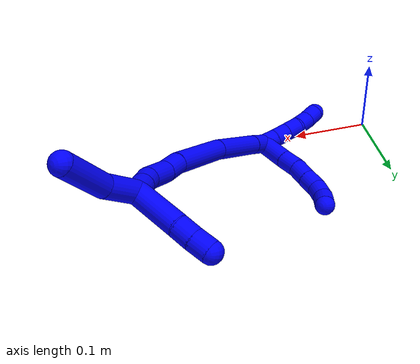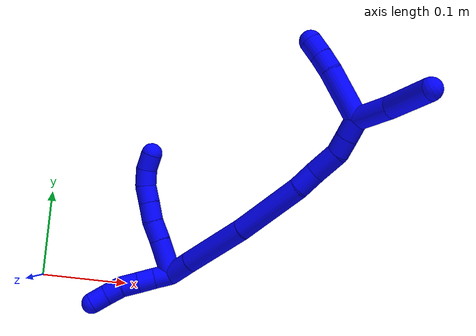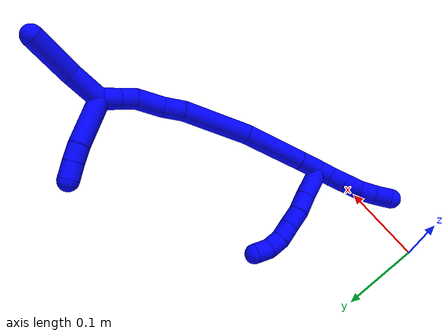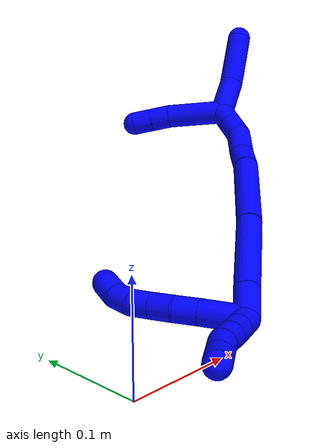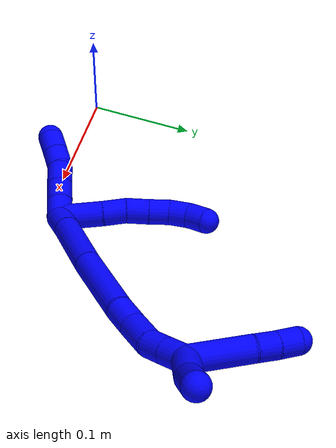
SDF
<sdf version="1.7">
 <world name="default">
  <model name="1">
   <static>0</static>
   <link name="1">
    <collision name="collision-cylinder-e_1_2_8">
     <pose>-0.005005 0.020351 0.004616 -1.34775 -0.23539 0.188293</pose>
     <geometry><cylinder><radius>0.0125</radius><length>0.042918</length></cylinder></geometry>
     <surface>
      <friction><ode><mu>1.16</mu><mu2>1.16</mu2><slip1>0</slip1><slip2>0</slip2></ode></friction>
      <contact><ode><kp>1e+06</kp><kd>1</kd><max_vel>0</max_vel><min_depth>0.001</min_depth></ode></contact>
     </surface>
    </collision>
    <visual name="visual-cylinder-e_1_2_8">
     <pose>-0.005005 0.020351 0.004616 -1.34775 -0.23539 0.188293</pose>
     <geometry><cylinder><radius>0.0125</radius><length>0.042918</length></cylinder></geometry>
     <material><ambient>0 0 1 1</ambient></material>
    </visual>
    <collision name="collision-cylinder-e_2_8_9">
     <pose>-0.013042 0.051818 0.011293 -1.38749 -0.262066 0.218332</pose>
     <geometry><cylinder><radius>0.0125</radius><length>0.023411</length></cylinder></geometry>
     <surface>
      <friction><ode><mu>1.16</mu><mu2>1.16</mu2><slip1>0</slip1><slip2>0</slip2></ode></friction>
      <contact><ode><kp>1e+06</kp><kd>1</kd><max_vel>0</max_vel><min_depth>0.001</min_depth></ode></contact>
     </surface>
    </collision>
    <visual name="visual-cylinder-e_2_8_9">
     <pose>-0.013042 0.051818 0.011293 -1.38749 -0.262066 0.218332</pose>
     <geometry><cylinder><radius>0.0125</radius><length>0.023411</length></cylinder></geometry>
     <material><ambient>0 0 1 1</ambient></material>
    </visual>
    <collision name="collision-cylinder-e_3_9_10">
     <pose>-0.017332 0.073625 0.016569 -1.27865 -0.112105 0.083389</pose>
     <geometry><cylinder><radius>0.0125</radius><length>0.022468</length></cylinder></geometry>
     <surface>
      <friction><ode><mu>1.16</mu><mu2>1.16</mu2><slip1>0</slip1><slip2>0</slip2></ode></friction>
      <contact><ode><kp>1e+06</kp><kd>1</kd><max_vel>0</max_vel><min_depth>0.001</min_depth></ode></contact>
     </surface>
    </collision>
    <visual name="visual-cylinder-e_3_9_10">
     <pose>-0.017332 0.073625 0.016569 -1.27865 -0.112105 0.083389</pose>
     <geometry><cylinder><radius>0.0125</radius><length>0.022468</length></cylinder></geometry>
     <material><ambient>0 0 1 1</ambient></material>
    </visual>
    <collision name="collision-cylinder-e_4_10_11">
     <pose>-0.020062 0.094269 0.022752 -1.28101 -0.14095 0.105132</pose>
     <geometry><cylinder><radius>0.0125</radius><length>0.020981</length></cylinder></geometry>
     <surface>
      <friction><ode><mu>1.16</mu><mu2>1.16</mu2><slip1>0</slip1><slip2>0</slip2></ode></friction>
      <contact><ode><kp>1e+06</kp><kd>1</kd><max_vel>0</max_vel><min_depth>0.001</min_depth></ode></contact>
     </surface>
    </collision>
    <visual name="visual-cylinder-e_4_10_11">
     <pose>-0.020062 0.094269 0.022752 -1.28101 -0.14095 0.105132</pose>
     <geometry><cylinder><radius>0.0125</radius><length>0.020981</length></cylinder></geometry>
     <material><ambient>0 0 1 1</ambient></material>
    </visual>
    <collision name="collision-cylinder-e_5_11_12">
     <pose>-0.022514 0.112516 0.031258 -0.982028 -0.097739 0.05229</pose>
     <geometry><cylinder><radius>0.0125</radius><length>0.02004</length></cylinder></geometry>
     <surface>
      <friction><ode><mu>1.16</mu><mu2>1.16</mu2><slip1>0</slip1><slip2>0</slip2></ode></friction>
      <contact><ode><kp>1e+06</kp><kd>1</kd><max_vel>0</max_vel><min_depth>0.001</min_depth></ode></contact>
     </surface>
    </collision>
    <visual name="visual-cylinder-e_5_11_12">
     <pose>-0.022514 0.112516 0.031258 -0.982028 -0.097739 0.05229</pose>
     <geometry><cylinder><radius>0.0125</radius><length>0.02004</length></cylinder></geometry>
     <material><ambient>0 0 1 1</ambient></material>
    </visual>
    <collision name="collision-cylinder-e_6_12_6">
     <pose>-0.024307 0.126868 0.044823 -0.646647 -0.08094 0.027135</pose>
     <geometry><cylinder><radius>0.0125</radius><length>0.02018</length></cylinder></geometry>
     <surface>
      <friction><ode><mu>1.16</mu><mu2>1.16</mu2><slip1>0</slip1><slip2>0</slip2></ode></friction>
      <contact><ode><kp>1e+06</kp><kd>1</kd><max_vel>0</max_vel><min_depth>0.001</min_depth></ode></contact>
     </surface>
    </collision>
    <visual name="visual-cylinder-e_6_12_6">
     <pose>-0.024307 0.126868 0.044823 -0.646647 -0.08094 0.027135</pose>
     <geometry><cylinder><radius>0.0125</radius><length>0.02018</length></cylinder></geometry>
     <material><ambient>0 0 1 1</ambient></material>
    </visual>
    <collision name="collision-cylinder-e_1_2_13">
     <pose>-0.005603 0.001327 -0.008176 -2.98065 -0.594693 2.62691</pose>
     <geometry><cylinder><radius>0.0125</radius><length>0.02</length></cylinder></geometry>
     <surface>
      <friction><ode><mu>1.16</mu><mu2>1.16</mu2><slip1>0</slip1><slip2>0</slip2></ode></friction>
      <contact><ode><kp>1e+06</kp><kd>1</kd><max_vel>0</max_vel><min_depth>0.001</min_depth></ode></contact>
     </surface>
    </collision>
    <visual name="visual-cylinder-e_1_2_13">
     <pose>-0.005603 0.001327 -0.008176 -2.98065 -0.594693 2.62691</pose>
     <geometry><cylinder><radius>0.0125</radius><length>0.02</length></cylinder></geometry>
     <material><ambient>0 0 1 1</ambient></material>
    </visual>
    <collision name="collision-cylinder-e_2_13_14">
     <pose>-0.017296 0.003598 -0.024227 -3.0224 -0.654957 2.79387</pose>
     <geometry><cylinder><radius>0.0125</radius><length>0.02</length></cylinder></geometry>
     <surface>
      <friction><ode><mu>1.16</mu><mu2>1.16</mu2><slip1>0</slip1><slip2>0</slip2></ode></friction>
      <contact><ode><kp>1e+06</kp><kd>1</kd><max_vel>0</max_vel><min_depth>0.001</min_depth></ode></contact>
     </surface>
    </collision>
    <visual name="visual-cylinder-e_2_13_14">
     <pose>-0.017296 0.003598 -0.024227 -3.0224 -0.654957 2.79387</pose>
     <geometry><cylinder><radius>0.0125</radius><length>0.02</length></cylinder></geometry>
     <material><ambient>0 0 1 1</ambient></material>
    </visual>
    <collision name="collision-cylinder-e_3_14_15">
     <pose>-0.029593 0.005589 -0.039873 -3.00759 -0.669374 2.76037</pose>
     <geometry><cylinder><radius>0.0125</radius><length>0.02</length></cylinder></geometry>
     <surface>
      <friction><ode><mu>1.16</mu><mu2>1.16</mu2><slip1>0</slip1><slip2>0</slip2></ode></friction>
      <contact><ode><kp>1e+06</kp><kd>1</kd><max_vel>0</max_vel><min_depth>0.001</min_depth></ode></contact>
     </surface>
    </collision>
    <visual name="visual-cylinder-e_3_14_15">
     <pose>-0.029593 0.005589 -0.039873 -3.00759 -0.669374 2.76037</pose>
     <geometry><cylinder><radius>0.0125</radius><length>0.02</length></cylinder></geometry>
     <material><ambient>0 0 1 1</ambient></material>
    </visual>
    <collision name="collision-cylinder-e_4_15_16">
     <pose>-0.040192 0.005795 -0.056588 3.04781 -0.454936 -2.74158</pose>
     <geometry><cylinder><radius>0.0125</radius><length>0.02</length></cylinder></geometry>
     <surface>
      <friction><ode><mu>1.16</mu><mu2>1.16</mu2><slip1>0</slip1><slip2>0</slip2></ode></friction>
      <contact><ode><kp>1e+06</kp><kd>1</kd><max_vel>0</max_vel><min_depth>0.001</min_depth></ode></contact>
     </surface>
    </collision>
    <visual name="visual-cylinder-e_4_15_16">
     <pose>-0.040192 0.005795 -0.056588 3.04781 -0.454936 -2.74158</pose>
     <geometry><cylinder><radius>0.0125</radius><length>0.02</length></cylinder></geometry>
     <material><ambient>0 0 1 1</ambient></material>
    </visual>
    <collision name="collision-cylinder-e_5_16_5">
     <pose>-0.049784 0.003493 -0.073949 2.96975 -0.546641 -2.5454</pose>
     <geometry><cylinder><radius>0.0125</radius><length>0.02</length></cylinder></geometry>
     <surface>
      <friction><ode><mu>1.16</mu><mu2>1.16</mu2><slip1>0</slip1><slip2>0</slip2></ode></friction>
      <contact><ode><kp>1e+06</kp><kd>1</kd><max_vel>0</max_vel><min_depth>0.001</min_depth></ode></contact>
     </surface>
    </collision>
    <visual name="visual-cylinder-e_5_16_5">
     <pose>-0.049784 0.003493 -0.073949 2.96975 -0.546641 -2.5454</pose>
     <geometry><cylinder><radius>0.0125</radius><length>0.02</length></cylinder></geometry>
     <material><ambient>0 0 1 1</ambient></material>
    </visual>
    <collision name="collision-cylinder-e_1_2_17">
     <pose>-0.000653 6.8e-05 0.016253 -0.004171 -0.04013 8.4e-05</pose>
     <geometry><cylinder><radius>0.0125</radius><length>0.032532</length></cylinder></geometry>
     <surface>
      <friction><ode><mu>1.16</mu><mu2>1.16</mu2><slip1>0</slip1><slip2>0</slip2></ode></friction>
      <contact><ode><kp>1e+06</kp><kd>1</kd><max_vel>0</max_vel><min_depth>0.001</min_depth></ode></contact>
     </surface>
    </collision>
    <visual name="visual-cylinder-e_1_2_17">
     <pose>-0.000653 6.8e-05 0.016253 -0.004171 -0.04013 8.4e-05</pose>
     <geometry><cylinder><radius>0.0125</radius><length>0.032532</length></cylinder></geometry>
     <material><ambient>0 0 1 1</ambient></material>
    </visual>
    <collision name="collision-cylinder-e_2_17_18">
     <pose>-0.001164 0.000195 0.073056 -0.001455 0.003479 -3e-06</pose>
     <geometry><cylinder><radius>0.0125</radius><length>0.081103</length></cylinder></geometry>
     <surface>
      <friction><ode><mu>1.16</mu><mu2>1.16</mu2><slip1>0</slip1><slip2>0</slip2></ode></friction>
      <contact><ode><kp>1e+06</kp><kd>1</kd><max_vel>0</max_vel><min_depth>0.001</min_depth></ode></contact>
     </surface>
    </collision>
    <visual name="visual-cylinder-e_2_17_18">
     <pose>-0.001164 0.000195 0.073056 -0.001455 0.003479 -3e-06</pose>
     <geometry><cylinder><radius>0.0125</radius><length>0.081103</length></cylinder></geometry>
     <material><ambient>0 0 1 1</ambient></material>
    </visual>
    <collision name="collision-cylinder-e_3_18_19">
     <pose>0.001348 0.00405 0.155512 -0.090339 0.056292 -0.002545</pose>
     <geometry><cylinder><radius>0.0125</radius><length>0.084284</length></cylinder></geometry>
     <surface>
      <friction><ode><mu>1.16</mu><mu2>1.16</mu2><slip1>0</slip1><slip2>0</slip2></ode></friction>
      <contact><ode><kp>1e+06</kp><kd>1</kd><max_vel>0</max_vel><min_depth>0.001</min_depth></ode></contact>
     </surface>
    </collision>
    <visual name="visual-cylinder-e_3_18_19">
     <pose>0.001348 0.00405 0.155512 -0.090339 0.056292 -0.002545</pose>
     <geometry><cylinder><radius>0.0125</radius><length>0.084284</length></cylinder></geometry>
     <material><ambient>0 0 1 1</ambient></material>
    </visual>
    <collision name="collision-cylinder-e_4_19_20">
     <pose>0.005504 0.010981 0.209713 -0.24964 0.139749 -0.017563</pose>
     <geometry><cylinder><radius>0.0125</radius><length>0.025632</length></cylinder></geometry>
     <surface>
      <friction><ode><mu>1.16</mu><mu2>1.16</mu2><slip1>0</slip1><slip2>0</slip2></ode></friction>
      <contact><ode><kp>1e+06</kp><kd>1</kd><max_vel>0</max_vel><min_depth>0.001</min_depth></ode></contact>
     </surface>
    </collision>
    <visual name="visual-cylinder-e_4_19_20">
     <pose>0.005504 0.010981 0.209713 -0.24964 0.139749 -0.017563</pose>
     <geometry><cylinder><radius>0.0125</radius><length>0.025632</length></cylinder></geometry>
     <material><ambient>0 0 1 1</ambient></material>
    </visual>
    <collision name="collision-cylinder-e_5_20_21">
     <pose>0.007493 0.016593 0.238374 -0.150215 0.012289 -0.000925</pose>
     <geometry><cylinder><radius>0.0125</radius><length>0.033102</length></cylinder></geometry>
     <surface>
      <friction><ode><mu>1.16</mu><mu2>1.16</mu2><slip1>0</slip1><slip2>0</slip2></ode></friction>
      <contact><ode><kp>1e+06</kp><kd>1</kd><max_vel>0</max_vel><min_depth>0.001</min_depth></ode></contact>
     </surface>
    </collision>
    <visual name="visual-cylinder-e_5_20_21">
     <pose>0.007493 0.016593 0.238374 -0.150215 0.012289 -0.000925</pose>
     <geometry><cylinder><radius>0.0125</radius><length>0.033102</length></cylinder></geometry>
     <material><ambient>0 0 1 1</ambient></material>
    </visual>
    <collision name="collision-cylinder-e_6_21_22">
     <pose>0.006394 0.023511 0.263935 -0.449819 -0.126805 0.029047</pose>
     <geometry><cylinder><radius>0.0125</radius><length>0.020594</length></cylinder></geometry>
     <surface>
      <friction><ode><mu>1.16</mu><mu2>1.16</mu2><slip1>0</slip1><slip2>0</slip2></ode></friction>
      <contact><ode><kp>1e+06</kp><kd>1</kd><max_vel>0</max_vel><min_depth>0.001</min_depth></ode></contact>
     </surface>
    </collision>
    <visual name="visual-cylinder-e_6_21_22">
     <pose>0.006394 0.023511 0.263935 -0.449819 -0.126805 0.029047</pose>
     <geometry><cylinder><radius>0.0125</radius><length>0.020594</length></cylinder></geometry>
     <material><ambient>0 0 1 1</ambient></material>
    </visual>
    <collision name="collision-cylinder-e_7_22_1">
     <pose>0.003544 0.032939 0.283241 -0.458321 -0.136436 0.031872</pose>
     <geometry><cylinder><radius>0.0125</radius><length>0.022754</length></cylinder></geometry>
     <surface>
      <friction><ode><mu>1.16</mu><mu2>1.16</mu2><slip1>0</slip1><slip2>0</slip2></ode></friction>
      <contact><ode><kp>1e+06</kp><kd>1</kd><max_vel>0</max_vel><min_depth>0.001</min_depth></ode></contact>
     </surface>
    </collision>
    <visual name="visual-cylinder-e_7_22_1">
     <pose>0.003544 0.032939 0.283241 -0.458321 -0.136436 0.031872</pose>
     <geometry><cylinder><radius>0.0125</radius><length>0.022754</length></cylinder></geometry>
     <material><ambient>0 0 1 1</ambient></material>
    </visual>
    <collision name="collision-cylinder-e_1_1_23">
     <pose>-0.003954 0.066795 0.294094 -1.545 -0.203219 0.198077</pose>
     <geometry><cylinder><radius>0.0125</radius><length>0.058973</length></cylinder></geometry>
     <surface>
      <friction><ode><mu>1.16</mu><mu2>1.16</mu2><slip1>0</slip1><slip2>0</slip2></ode></friction>
      <contact><ode><kp>1e+06</kp><kd>1</kd><max_vel>0</max_vel><min_depth>0.001</min_depth></ode></contact>
     </surface>
    </collision>
    <visual name="visual-cylinder-e_1_1_23">
     <pose>-0.003954 0.066795 0.294094 -1.545 -0.203219 0.198077</pose>
     <geometry><cylinder><radius>0.0125</radius><length>0.058973</length></cylinder></geometry>
     <material><ambient>0 0 1 1</ambient></material>
    </visual>
    <collision name="collision-cylinder-e_2_23_24">
     <pose>-0.011222 0.105776 0.294041 -1.64952 -0.129118 0.139672</pose>
     <geometry><cylinder><radius>0.0125</radius><length>0.020455</length></cylinder></geometry>
     <surface>
      <friction><ode><mu>1.16</mu><mu2>1.16</mu2><slip1>0</slip1><slip2>0</slip2></ode></friction>
      <contact><ode><kp>1e+06</kp><kd>1</kd><max_vel>0</max_vel><min_depth>0.001</min_depth></ode></contact>
     </surface>
    </collision>
    <visual name="visual-cylinder-e_2_23_24">
     <pose>-0.011222 0.105776 0.294041 -1.64952 -0.129118 0.139672</pose>
     <geometry><cylinder><radius>0.0125</radius><length>0.020455</length></cylinder></geometry>
     <material><ambient>0 0 1 1</ambient></material>
    </visual>
    <collision name="collision-cylinder-e_3_24_4">
     <pose>-0.014195 0.125968 0.292041 -1.6895 -0.161679 0.182001</pose>
     <geometry><cylinder><radius>0.0125</radius><length>0.020573</length></cylinder></geometry>
     <surface>
      <friction><ode><mu>1.16</mu><mu2>1.16</mu2><slip1>0</slip1><slip2>0</slip2></ode></friction>
      <contact><ode><kp>1e+06</kp><kd>1</kd><max_vel>0</max_vel><min_depth>0.001</min_depth></ode></contact>
     </surface>
    </collision>
    <visual name="visual-cylinder-e_3_24_4">
     <pose>-0.014195 0.125968 0.292041 -1.6895 -0.161679 0.182001</pose>
     <geometry><cylinder><radius>0.0125</radius><length>0.020573</length></cylinder></geometry>
     <material><ambient>0 0 1 1</ambient></material>
    </visual>
    <collision name="collision-cylinder-e_1_1_25">
     <pose>-0.000349 0.032392 0.313454 0.268566 -0.11203 -0.01515</pose>
     <geometry><cylinder><radius>0.0125</radius><length>0.041969</length></cylinder></geometry>
     <surface>
      <friction><ode><mu>1.16</mu><mu2>1.16</mu2><slip1>0</slip1><slip2>0</slip2></ode></friction>
      <contact><ode><kp>1e+06</kp><kd>1</kd><max_vel>0</max_vel><min_depth>0.001</min_depth></ode></contact>
     </surface>
    </collision>
    <visual name="visual-cylinder-e_1_1_25">
     <pose>-0.000349 0.032392 0.313454 0.268566 -0.11203 -0.01515</pose>
     <geometry><cylinder><radius>0.0125</radius><length>0.041969</length></cylinder></geometry>
     <material><ambient>0 0 1 1</ambient></material>
    </visual>
    <collision name="collision-cylinder-e_2_25_3">
     <pose>-0.013059 0.019188 0.359553 0.286955 -0.36524 -0.053348</pose>
     <geometry><cylinder><radius>0.0125</radius><length>0.058031</length></cylinder></geometry>
     <surface>
      <friction><ode><mu>1.16</mu><mu2>1.16</mu2><slip1>0</slip1><slip2>0</slip2></ode></friction>
      <contact><ode><kp>1e+06</kp><kd>1</kd><max_vel>0</max_vel><min_depth>0.001</min_depth></ode></contact>
     </surface>
    </collision>
    <visual name="visual-cylinder-e_2_25_3">
     <pose>-0.013059 0.019188 0.359553 0.286955 -0.36524 -0.053348</pose>
     <geometry><cylinder><radius>0.0125</radius><length>0.058031</length></cylinder></geometry>
     <material><ambient>0 0 1 1</ambient></material>
    </visual>
    <collision name="collision-sphere-3">
     <pose>-0.023422 0.011518 0.385547 0 -0 0</pose>
     <geometry><sphere><radius>0.0125</radius></sphere></geometry>
     <surface>
      <friction><ode><mu>1.16</mu><mu2>1.16</mu2><slip1>0</slip1><slip2>0</slip2></ode></friction>
      <contact><ode><kp>1e+06</kp><kd>1</kd><max_vel>0</max_vel><min_depth>0.001</min_depth></ode></contact>
     </surface>
    </collision>
    <visual name="visual-sphere-3">
     <pose>-0.023422 0.011518 0.385547 0 -0 0</pose>
     <geometry><sphere><radius>0.0125</radius></sphere></geometry>
     <material><ambient>0 0 1 1</ambient></material>
    </visual>
    <collision name="collision-sphere-25">
     <pose>-0.002695 0.026859 0.333559 0 -0 0</pose>
     <geometry><sphere><radius>0.0125</radius></sphere></geometry>
     <surface>
      <friction><ode><mu>1.16</mu><mu2>1.16</mu2><slip1>0</slip1><slip2>0</slip2></ode></friction>
      <contact><ode><kp>1e+06</kp><kd>1</kd><max_vel>0</max_vel><min_depth>0.001</min_depth></ode></contact>
     </surface>
    </collision>
    <visual name="visual-sphere-25">
     <pose>-0.002695 0.026859 0.333559 0 -0 0</pose>
     <geometry><sphere><radius>0.0125</radius></sphere></geometry>
     <material><ambient>0 0 1 1</ambient></material>
    </visual>
    <collision name="collision-sphere-4">
     <pose>-0.01585 0.136048 0.290839 0 -0 0</pose>
     <geometry><sphere><radius>0.0125</radius></sphere></geometry>
     <surface>
      <friction><ode><mu>1.16</mu><mu2>1.16</mu2><slip1>0</slip1><slip2>0</slip2></ode></friction>
      <contact><ode><kp>1e+06</kp><kd>1</kd><max_vel>0</max_vel><min_depth>0.001</min_depth></ode></contact>
     </surface>
    </collision>
    <visual name="visual-sphere-4">
     <pose>-0.01585 0.136048 0.290839 0 -0 0</pose>
     <geometry><sphere><radius>0.0125</radius></sphere></geometry>
     <material><ambient>0 0 1 1</ambient></material>
    </visual>
    <collision name="collision-sphere-24">
     <pose>-0.012539 0.115887 0.293244 0 -0 0</pose>
     <geometry><sphere><radius>0.0125</radius></sphere></geometry>
     <surface>
      <friction><ode><mu>1.16</mu><mu2>1.16</mu2><slip1>0</slip1><slip2>0</slip2></ode></friction>
      <contact><ode><kp>1e+06</kp><kd>1</kd><max_vel>0</max_vel><min_depth>0.001</min_depth></ode></contact>
     </surface>
    </collision>
    <visual name="visual-sphere-24">
     <pose>-0.012539 0.115887 0.293244 0 -0 0</pose>
     <geometry><sphere><radius>0.0125</radius></sphere></geometry>
     <material><ambient>0 0 1 1</ambient></material>
    </visual>
    <collision name="collision-sphere-23">
     <pose>-0.009905 0.095665 0.294839 0 -0 0</pose>
     <geometry><sphere><radius>0.0125</radius></sphere></geometry>
     <surface>
      <friction><ode><mu>1.16</mu><mu2>1.16</mu2><slip1>0</slip1><slip2>0</slip2></ode></friction>
      <contact><ode><kp>1e+06</kp><kd>1</kd><max_vel>0</max_vel><min_depth>0.001</min_depth></ode></contact>
     </surface>
    </collision>
    <visual name="visual-sphere-23">
     <pose>-0.009905 0.095665 0.294839 0 -0 0</pose>
     <geometry><sphere><radius>0.0125</radius></sphere></geometry>
     <material><ambient>0 0 1 1</ambient></material>
    </visual>
    <collision name="collision-sphere-1">
     <pose>0.001997 0.037925 0.293349 0 -0 0</pose>
     <geometry><sphere><radius>0.0125</radius></sphere></geometry>
     <surface>
      <friction><ode><mu>1.16</mu><mu2>1.16</mu2><slip1>0</slip1><slip2>0</slip2></ode></friction>
      <contact><ode><kp>1e+06</kp><kd>1</kd><max_vel>0</max_vel><min_depth>0.001</min_depth></ode></contact>
     </surface>
    </collision>
    <visual name="visual-sphere-1">
     <pose>0.001997 0.037925 0.293349 0 -0 0</pose>
     <geometry><sphere><radius>0.0125</radius></sphere></geometry>
     <material><ambient>0 0 1 1</ambient></material>
    </visual>
    <collision name="collision-sphere-22">
     <pose>0.005092 0.027952 0.273133 0 -0 0</pose>
     <geometry><sphere><radius>0.0125</radius></sphere></geometry>
     <surface>
      <friction><ode><mu>1.16</mu><mu2>1.16</mu2><slip1>0</slip1><slip2>0</slip2></ode></friction>
      <contact><ode><kp>1e+06</kp><kd>1</kd><max_vel>0</max_vel><min_depth>0.001</min_depth></ode></contact>
     </surface>
    </collision>
    <visual name="visual-sphere-22">
     <pose>0.005092 0.027952 0.273133 0 -0 0</pose>
     <geometry><sphere><radius>0.0125</radius></sphere></geometry>
     <material><ambient>0 0 1 1</ambient></material>
    </visual>
    <collision name="collision-sphere-21">
     <pose>0.007696 0.019069 0.254737 0 -0 0</pose>
     <geometry><sphere><radius>0.0125</radius></sphere></geometry>
     <surface>
      <friction><ode><mu>1.16</mu><mu2>1.16</mu2><slip1>0</slip1><slip2>0</slip2></ode></friction>
      <contact><ode><kp>1e+06</kp><kd>1</kd><max_vel>0</max_vel><min_depth>0.001</min_depth></ode></contact>
     </surface>
    </collision>
    <visual name="visual-sphere-21">
     <pose>0.007696 0.019069 0.254737 0 -0 0</pose>
     <geometry><sphere><radius>0.0125</radius></sphere></geometry>
     <material><ambient>0 0 1 1</ambient></material>
    </visual>
    <collision name="collision-sphere-12">
     <pose>-0.023492 0.120809 0.036796 0 -0 0</pose>
     <geometry><sphere><radius>0.0125</radius></sphere></geometry>
     <surface>
      <friction><ode><mu>1.16</mu><mu2>1.16</mu2><slip1>0</slip1><slip2>0</slip2></ode></friction>
      <contact><ode><kp>1e+06</kp><kd>1</kd><max_vel>0</max_vel><min_depth>0.001</min_depth></ode></contact>
     </surface>
    </collision>
    <visual name="visual-sphere-12">
     <pose>-0.023492 0.120809 0.036796 0 -0 0</pose>
     <geometry><sphere><radius>0.0125</radius></sphere></geometry>
     <material><ambient>0 0 1 1</ambient></material>
    </visual>
    <collision name="collision-sphere-11">
     <pose>-0.021536 0.104222 0.02572 0 -0 0</pose>
     <geometry><sphere><radius>0.0125</radius></sphere></geometry>
     <surface>
      <friction><ode><mu>1.16</mu><mu2>1.16</mu2><slip1>0</slip1><slip2>0</slip2></ode></friction>
      <contact><ode><kp>1e+06</kp><kd>1</kd><max_vel>0</max_vel><min_depth>0.001</min_depth></ode></contact>
     </surface>
    </collision>
    <visual name="visual-sphere-11">
     <pose>-0.021536 0.104222 0.02572 0 -0 0</pose>
     <geometry><sphere><radius>0.0125</radius></sphere></geometry>
     <material><ambient>0 0 1 1</ambient></material>
    </visual>
    <collision name="collision-sphere-10">
     <pose>-0.018588 0.084315 0.019784 0 -0 0</pose>
     <geometry><sphere><radius>0.0125</radius></sphere></geometry>
     <surface>
      <friction><ode><mu>1.16</mu><mu2>1.16</mu2><slip1>0</slip1><slip2>0</slip2></ode></friction>
      <contact><ode><kp>1e+06</kp><kd>1</kd><max_vel>0</max_vel><min_depth>0.001</min_depth></ode></contact>
     </surface>
    </collision>
    <visual name="visual-sphere-10">
     <pose>-0.018588 0.084315 0.019784 0 -0 0</pose>
     <geometry><sphere><radius>0.0125</radius></sphere></geometry>
     <material><ambient>0 0 1 1</ambient></material>
    </visual>
    <collision name="collision-sphere-9">
     <pose>-0.016075 0.062934 0.013354 0 -0 0</pose>
     <geometry><sphere><radius>0.0125</radius></sphere></geometry>
     <surface>
      <friction><ode><mu>1.16</mu><mu2>1.16</mu2><slip1>0</slip1><slip2>0</slip2></ode></friction>
      <contact><ode><kp>1e+06</kp><kd>1</kd><max_vel>0</max_vel><min_depth>0.001</min_depth></ode></contact>
     </surface>
    </collision>
    <visual name="visual-sphere-9">
     <pose>-0.016075 0.062934 0.013354 0 -0 0</pose>
     <geometry><sphere><radius>0.0125</radius></sphere></geometry>
     <material><ambient>0 0 1 1</ambient></material>
    </visual>
    <collision name="collision-sphere-2">
     <geometry><sphere><radius>0.0125</radius></sphere></geometry>
     <surface>
      <friction><ode><mu>1.16</mu><mu2>1.16</mu2><slip1>0</slip1><slip2>0</slip2></ode></friction>
      <contact><ode><kp>1e+06</kp><kd>1</kd><max_vel>0</max_vel><min_depth>0.001</min_depth></ode></contact>
     </surface>
    </collision>
    <visual name="visual-sphere-2">
     <geometry><sphere><radius>0.0125</radius></sphere></geometry>
     <material><ambient>0 0 1 1</ambient></material>
    </visual>
    <collision name="collision-sphere-19">
     <pose>0.003719 0.007845 0.197416 0 -0 0</pose>
     <geometry><sphere><radius>0.0125</radius></sphere></geometry>
     <surface>
      <friction><ode><mu>1.16</mu><mu2>1.16</mu2><slip1>0</slip1><slip2>0</slip2></ode></friction>
      <contact><ode><kp>1e+06</kp><kd>1</kd><max_vel>0</max_vel><min_depth>0.001</min_depth></ode></contact>
     </surface>
    </collision>
    <visual name="visual-sphere-19">
     <pose>0.003719 0.007845 0.197416 0 -0 0</pose>
     <geometry><sphere><radius>0.0125</radius></sphere></geometry>
     <material><ambient>0 0 1 1</ambient></material>
    </visual>
    <collision name="collision-sphere-8">
     <pose>-0.01001 0.040701 0.009232 0 -0 0</pose>
     <geometry><sphere><radius>0.0125</radius></sphere></geometry>
     <surface>
      <friction><ode><mu>1.16</mu><mu2>1.16</mu2><slip1>0</slip1><slip2>0</slip2></ode></friction>
      <contact><ode><kp>1e+06</kp><kd>1</kd><max_vel>0</max_vel><min_depth>0.001</min_depth></ode></contact>
     </surface>
    </collision>
    <visual name="visual-sphere-8">
     <pose>-0.01001 0.040701 0.009232 0 -0 0</pose>
     <geometry><sphere><radius>0.0125</radius></sphere></geometry>
     <material><ambient>0 0 1 1</ambient></material>
    </visual>
    <collision name="collision-sphere-6">
     <pose>-0.025123 0.132928 0.05285 0 -0 0</pose>
     <geometry><sphere><radius>0.0125</radius></sphere></geometry>
     <surface>
      <friction><ode><mu>1.16</mu><mu2>1.16</mu2><slip1>0</slip1><slip2>0</slip2></ode></friction>
      <contact><ode><kp>1e+06</kp><kd>1</kd><max_vel>0</max_vel><min_depth>0.001</min_depth></ode></contact>
     </surface>
    </collision>
    <visual name="visual-sphere-6">
     <pose>-0.025123 0.132928 0.05285 0 -0 0</pose>
     <geometry><sphere><radius>0.0125</radius></sphere></geometry>
     <material><ambient>0 0 1 1</ambient></material>
    </visual>
    <collision name="collision-sphere-13">
     <pose>-0.011205 0.002655 -0.016352 0 -0 0</pose>
     <geometry><sphere><radius>0.0125</radius></sphere></geometry>
     <surface>
      <friction><ode><mu>1.16</mu><mu2>1.16</mu2><slip1>0</slip1><slip2>0</slip2></ode></friction>
      <contact><ode><kp>1e+06</kp><kd>1</kd><max_vel>0</max_vel><min_depth>0.001</min_depth></ode></contact>
     </surface>
    </collision>
    <visual name="visual-sphere-13">
     <pose>-0.011205 0.002655 -0.016352 0 -0 0</pose>
     <geometry><sphere><radius>0.0125</radius></sphere></geometry>
     <material><ambient>0 0 1 1</ambient></material>
    </visual>
    <collision name="collision-sphere-14">
     <pose>-0.023388 0.004541 -0.032101 0 -0 0</pose>
     <geometry><sphere><radius>0.0125</radius></sphere></geometry>
     <surface>
      <friction><ode><mu>1.16</mu><mu2>1.16</mu2><slip1>0</slip1><slip2>0</slip2></ode></friction>
      <contact><ode><kp>1e+06</kp><kd>1</kd><max_vel>0</max_vel><min_depth>0.001</min_depth></ode></contact>
     </surface>
    </collision>
    <visual name="visual-sphere-14">
     <pose>-0.023388 0.004541 -0.032101 0 -0 0</pose>
     <geometry><sphere><radius>0.0125</radius></sphere></geometry>
     <material><ambient>0 0 1 1</ambient></material>
    </visual>
    <collision name="collision-sphere-15">
     <pose>-0.035797 0.006636 -0.047645 0 -0 0</pose>
     <geometry><sphere><radius>0.0125</radius></sphere></geometry>
     <surface>
      <friction><ode><mu>1.16</mu><mu2>1.16</mu2><slip1>0</slip1><slip2>0</slip2></ode></friction>
      <contact><ode><kp>1e+06</kp><kd>1</kd><max_vel>0</max_vel><min_depth>0.001</min_depth></ode></contact>
     </surface>
    </collision>
    <visual name="visual-sphere-15">
     <pose>-0.035797 0.006636 -0.047645 0 -0 0</pose>
     <geometry><sphere><radius>0.0125</radius></sphere></geometry>
     <material><ambient>0 0 1 1</ambient></material>
    </visual>
    <collision name="collision-sphere-16">
     <pose>-0.044586 0.004954 -0.065532 0 -0 0</pose>
     <geometry><sphere><radius>0.0125</radius></sphere></geometry>
     <surface>
      <friction><ode><mu>1.16</mu><mu2>1.16</mu2><slip1>0</slip1><slip2>0</slip2></ode></friction>
      <contact><ode><kp>1e+06</kp><kd>1</kd><max_vel>0</max_vel><min_depth>0.001</min_depth></ode></contact>
     </surface>
    </collision>
    <visual name="visual-sphere-16">
     <pose>-0.044586 0.004954 -0.065532 0 -0 0</pose>
     <geometry><sphere><radius>0.0125</radius></sphere></geometry>
     <material><ambient>0 0 1 1</ambient></material>
    </visual>
    <collision name="collision-sphere-5">
     <pose>-0.054982 0.002032 -0.082366 0 -0 0</pose>
     <geometry><sphere><radius>0.0125</radius></sphere></geometry>
     <surface>
      <friction><ode><mu>1.16</mu><mu2>1.16</mu2><slip1>0</slip1><slip2>0</slip2></ode></friction>
      <contact><ode><kp>1e+06</kp><kd>1</kd><max_vel>0</max_vel><min_depth>0.001</min_depth></ode></contact>
     </surface>
    </collision>
    <visual name="visual-sphere-5">
     <pose>-0.054982 0.002032 -0.082366 0 -0 0</pose>
     <geometry><sphere><radius>0.0125</radius></sphere></geometry>
     <material><ambient>0 0 1 1</ambient></material>
    </visual>
    <collision name="collision-sphere-17">
     <pose>-0.001305 0.000136 0.032505 0 -0 0</pose>
     <geometry><sphere><radius>0.0125</radius></sphere></geometry>
     <surface>
      <friction><ode><mu>1.16</mu><mu2>1.16</mu2><slip1>0</slip1><slip2>0</slip2></ode></friction>
      <contact><ode><kp>1e+06</kp><kd>1</kd><max_vel>0</max_vel><min_depth>0.001</min_depth></ode></contact>
     </surface>
    </collision>
    <visual name="visual-sphere-17">
     <pose>-0.001305 0.000136 0.032505 0 -0 0</pose>
     <geometry><sphere><radius>0.0125</radius></sphere></geometry>
     <material><ambient>0 0 1 1</ambient></material>
    </visual>
    <collision name="collision-sphere-18">
     <pose>-0.001023 0.000254 0.113608 0 -0 0</pose>
     <geometry><sphere><radius>0.0125</radius></sphere></geometry>
     <surface>
      <friction><ode><mu>1.16</mu><mu2>1.16</mu2><slip1>0</slip1><slip2>0</slip2></ode></friction>
      <contact><ode><kp>1e+06</kp><kd>1</kd><max_vel>0</max_vel><min_depth>0.001</min_depth></ode></contact>
     </surface>
    </collision>
    <visual name="visual-sphere-18">
     <pose>-0.001023 0.000254 0.113608 0 -0 0</pose>
     <geometry><sphere><radius>0.0125</radius></sphere></geometry>
     <material><ambient>0 0 1 1</ambient></material>
    </visual>
    <collision name="collision-sphere-20">
     <pose>0.007289 0.014116 0.222011 0 -0 0</pose>
     <geometry><sphere><radius>0.0125</radius></sphere></geometry>
     <surface>
      <friction><ode><mu>1.16</mu><mu2>1.16</mu2><slip1>0</slip1><slip2>0</slip2></ode></friction>
      <contact><ode><kp>1e+06</kp><kd>1</kd><max_vel>0</max_vel><min_depth>0.001</min_depth></ode></contact>
     </surface>
    </collision>
    <visual name="visual-sphere-20">
     <pose>0.007289 0.014116 0.222011 0 -0 0</pose>
     <geometry><sphere><radius>0.0125</radius></sphere></geometry>
     <material><ambient>0 0 1 1</ambient></material>
    </visual>
    <inertial>
     <pose>-0.008066 0.032694 0.142508 0 -0 0</pose>
     <mass>0.75</mass>
     <inertia><ixx>0.000168</ixx><ixy>0</ixy><ixz>0</ixz><iyy>0.000178</iyy><iyz>0</iyz><izz>6e-06</izz></inertia>
    </inertial>
   </link>
   <pose>0.153216 0.017014 0.012431 -0.545478 0.955481 0.027176</pose>
  </model>
 </world>
</sdf>
